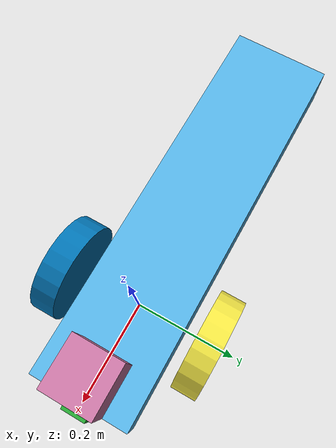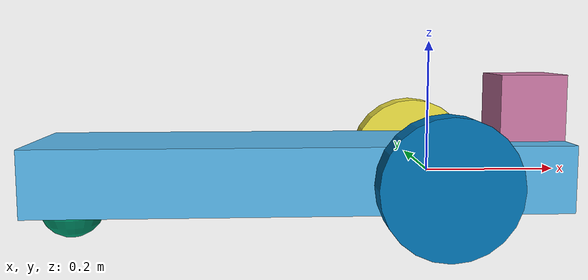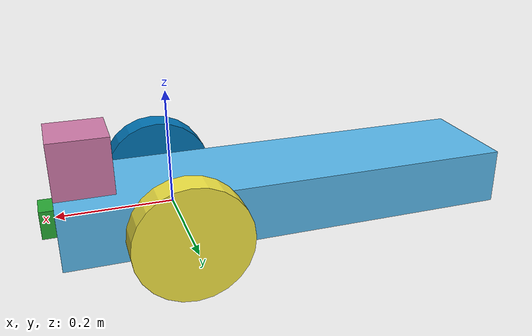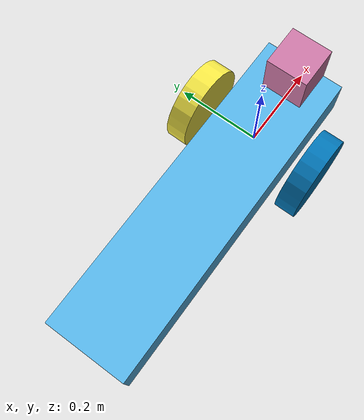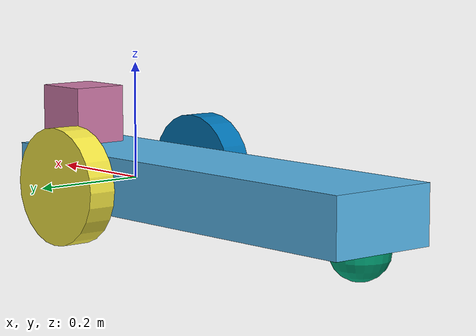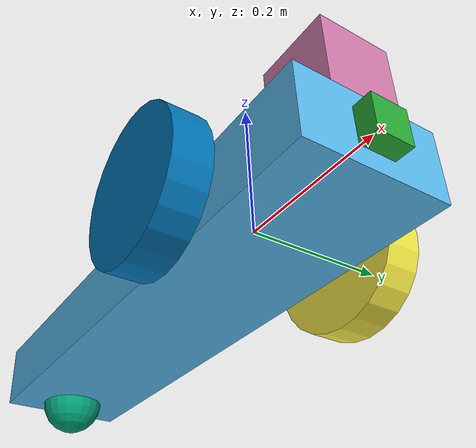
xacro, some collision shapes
<?xml version='1.0'?>

<robot name="udacity_bot" xmlns:xacro="http://www.ros.org/wiki/xacro">

  <xacro:include filename="$(find udacity_bot)/urdf/udacity_bot.gazebo" />

<link name="robot_footprint"></link>

  <joint name="robot_footprint_joint" type="fixed">
    <origin xyz="0 0 0" rpy="0 0 0" />
    <parent link="robot_footprint"/>
    <child link="chassis" />
  </joint>

  <!-- Robot chasis -->
  <link name='chassis'>
    <pose>0 0 0.1 0 0 0</pose>

    <inertial>
      <mass value="15.0"/>
      <origin xyz="0.0 0 0" rpy=" 0 0 0"/>
      <inertia ixx="0.1" ixy="0" ixz="0"
                iyy="0.1" iyz="0"
                izz="0.1" />
    </inertial>

    <collision name='collision'>
      <origin xyz="-0.2 0 0" rpy=" 0 0 0"/>
      <geometry>
        <box size=".8 .2 .1"/>
      </geometry>
    </collision>

    <visual name='chassis_visual'>
      <origin xyz="-0.2 0 0" rpy=" 0 0 0"/>
      <geometry>
        <box size=".8 .2 .1"/>
      </geometry>
    </visual>
  </link>

  <link name='caste_wheel'>

   <inertial>
      <mass value="2.0"/>
      <origin xyz="0.0 0 0" rpy=" 0 0 0"/>
      <inertia ixx="0.1" ixy="0" ixz="0"
                iyy="0.1" iyz="0"
                izz="0.1" />
    </inertial>

    <collision name='back_caster_collision'>
      <origin xyz="0 0 0" rpy=" 0 0 0"/>
      <geometry>
        <sphere radius="0.0499"/>
      </geometry>
    </collision>

    <visual name='back_caster_visual'>
      <origin xyz="0 0 0" rpy=" 0 0 0"/>
      <geometry>
        <sphere radius="0.05"/>
      </geometry>
    </visual>
  </link>

    <joint name="caste_joint" type="fixed">
      <origin xyz="-0.55 0 -0.05" rpy="0 0 0" />
      <parent link="chassis"/>
      <child link="caste_wheel" />
    </joint>

    <!-- Macro for creating wheel links -->

   <xacro:macro name="wheel" params="name">

     <link name='${name}'>
       <pose>0 0 0.1 0 0 0</pose>

       <inertial>
         <mass value="5.0"/>
         <origin xyz="0.0 0 0" rpy="0 1.5707 1.5707"/>
         <inertia ixx="0.1" ixy="0" ixz="0"
                  iyy="0.1" iyz="0"
                  izz="0.1" />
         </inertial>

       <collision name='collision'>
         <origin xyz="0 0 0" rpy="0 1.5707 1.5707"/>
         <geometry>
           <cylinder radius="0.1" length="0.05"/>
         </geometry>
       </collision>

       <visual name='${name}_visual'>
         <origin xyz="0 0 0" rpy="0 1.5707 1.5707"/>
         <geometry>
           <cylinder radius="0.1" length="0.05"/>
         </geometry>
       </visual>

     </link>
   </xacro:macro>

    <!-- creating left and right wheels -->
   <xacro:wheel name="left_wheel"/>
   <xacro:wheel name="right_wheel"/>

   <!-- Creating wheel joints -->

   <joint type="continuous" name="left_wheel_hinge">
     <origin xyz="0 0.15 0" rpy="0 0 0"/>
     <child link="left_wheel"/>
     <parent link="chassis"/>
     <axis xyz="0 1 0" rpy="0 0 0"/>
     <limit effort="10000" velocity="1000"/>
     <joint_properties damping="1.0" friction="1.0"/>
   </joint>

   <joint type="continuous" name="right_wheel_hinge">
      <origin xyz="0 -0.15 0" rpy="0 0 0"/>
      <child link="right_wheel"/>
      <parent link="chassis"/>
      <axis xyz="0 1 0" rpy="0 0 0"/>
      <limit effort="10000" velocity="1000"/>
      <joint_properties damping="1.0" friction="1.0"/>
   </joint>

   <!-- Adding camera-->

   <link name='camera'>
     <pose>0 0 0 0 0 0</pose>

     <inertial>
       <mass value="0.1"/>
       <origin xyz="0.0 0 0" rpy=" 0 0 0"/>
       <inertia ixx="1e-6" ixy="0" ixz="0"
                iyy="1e-6" iyz="0"
                izz="1e-6" />
     </inertial>

     <collision name='collision'>
       <origin xyz="0 0 0" rpy=" 0 0 0"/>
       <geometry>
         <box size=".05 .05 .05"/>
       </geometry>
     </collision>

     <visual name='camera_visual'>
       <origin xyz="0 0 0" rpy=" 0 0 0"/>
       <geometry>
         <box size=".05 .05 .05"/>
       </geometry>
     </visual>
    </link>

    <joint name="camera_joint" type="fixed">
      <origin xyz=".2 0 0" rpy="0 0 0" />
      <parent link="chassis"/>
      <child link="camera" />
    </joint>

    <!-- Add laser range finder-->

   <link name='hokuyo'>
     <pose>0 0 0 0 0 0</pose>

     <inertial>
       <mass value="0.1"/>
       <origin xyz="0.0 0 0" rpy=" 0 0 0"/>
       <inertia ixx="1e-6" ixy="0" ixz="0"
                iyy="1e-6" iyz="0"
                izz="1e-6" />
     </inertial>

     <collision name='collision'>
       <origin xyz="0 0 0" rpy=" 0 0 0"/>
       <geometry>
         <box size=".1 .1 .1"/>
       </geometry>
     </collision>

     <visual name='hokuyo_visual'>
       <origin xyz="0 0 0" rpy=" 0 0 0"/>
       <geometry>
         <mesh filename="package://udacity_bot/meshes/hokuyo.dae"/>
       </geometry>
     </visual>
    </link>

    <joint name="hokuyo_joint" type="fixed">
      <origin xyz="0.15 0 0.1" rpy="0 0 0" />
      <parent link="chassis"/>
      <child link="hokuyo" />
    </joint>

</robot>
